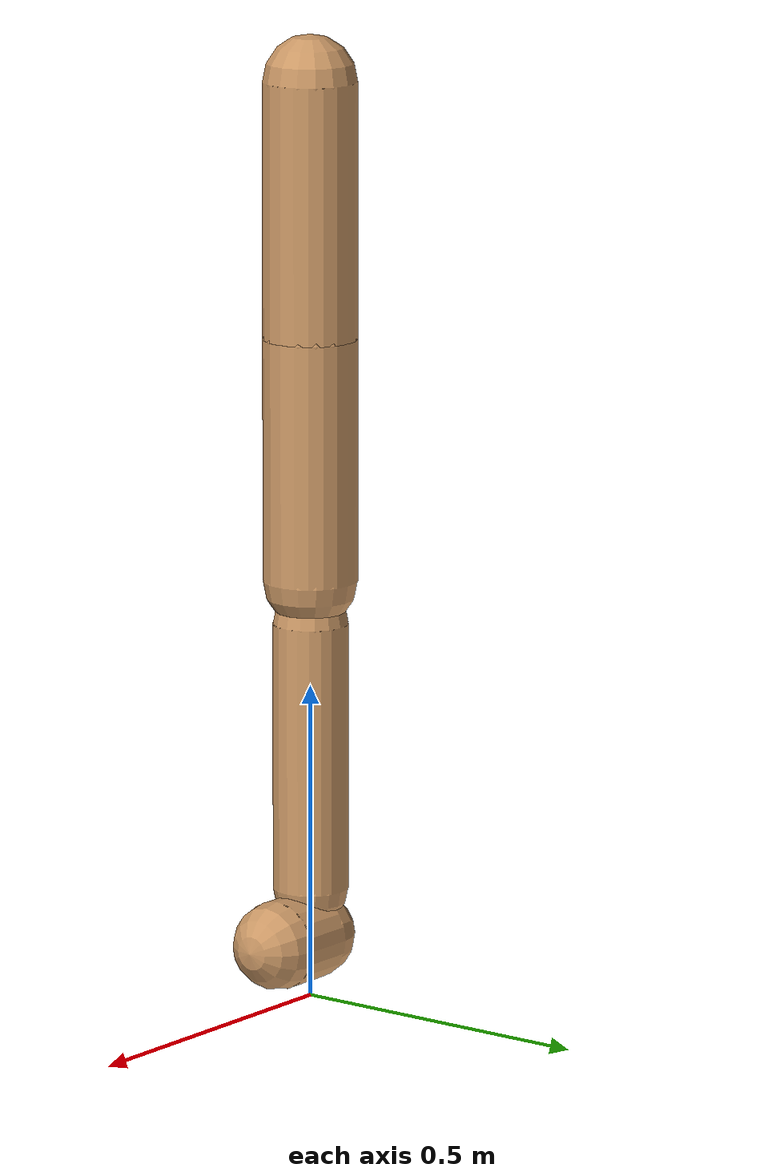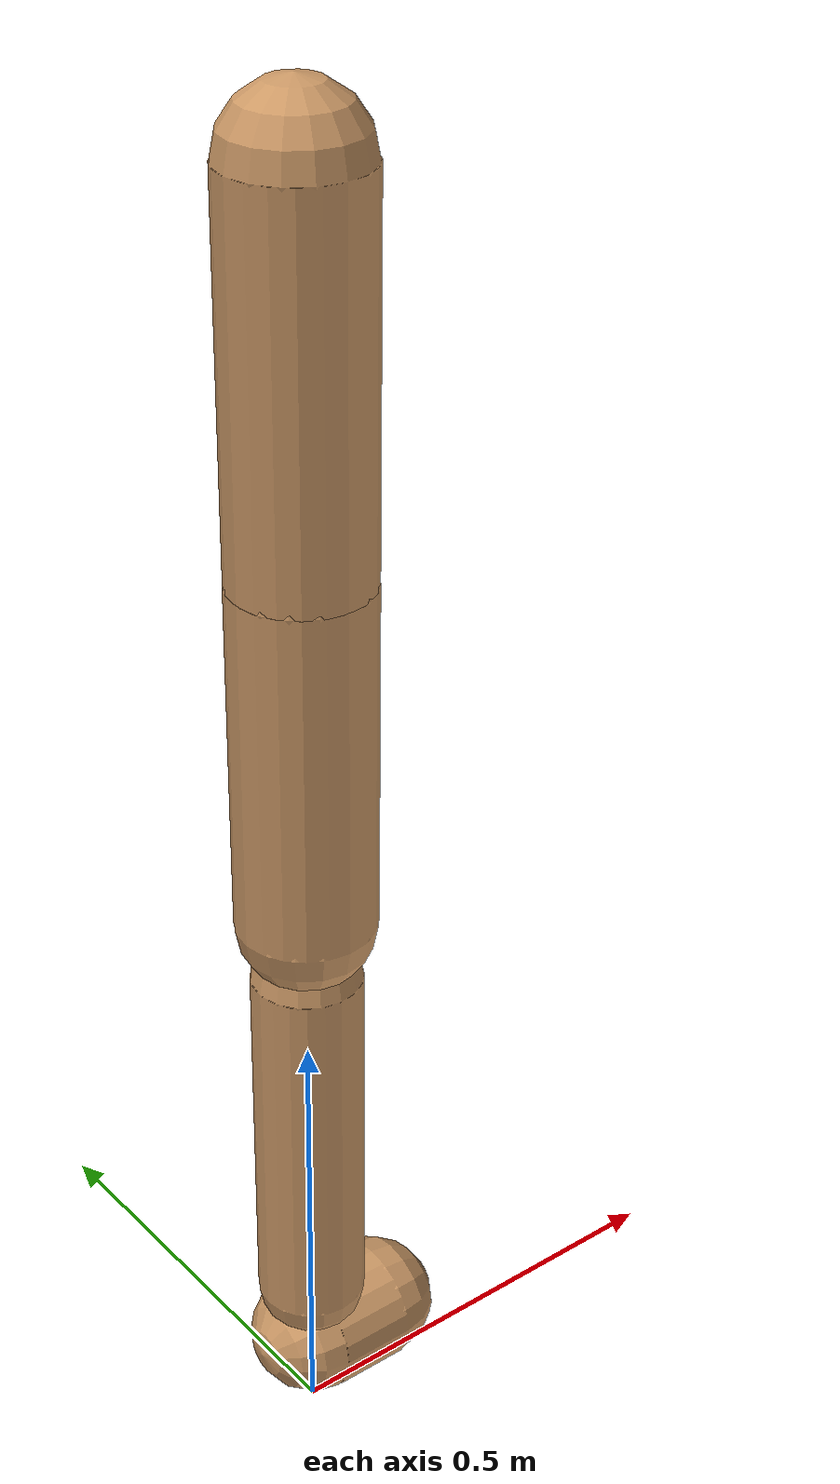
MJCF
<mujoco model="walker2d">
  <compiler angle="degree" coordinate="global" inertiafromgeom="true" />
  <default>
    <joint armature="0.01" damping=".1" limited="true" />
    <geom conaffinity="0" condim="3" contype="1" density="1000" friction="0.8 .1 .1" rgba="0.8 0.6 .4 1" />
  </default>
  <option integrator="RK4" timestep="0.002" />
  <worldbody>

    <body name="torso" pos="0 0 -0.14372296927317557">
      <joint armature="0" axis="1 0 0" damping="0" limited="false" name="ignorex" pos="0 0 0" stiffness="0" type="slide" />
      <joint armature="0" axis="0 0 1" damping="0" limited="false" name="ignorez" pos="0 0 0" ref="1.25" stiffness="0" type="slide" />
      <joint armature="0" axis="0 1 0" damping="0" limited="false" name="ignorey" pos="0 0 0" stiffness="0" type="hinge" />
      <geom fromto="0 0 1.45 0 0 1.05" name="torso_geom" size="0.07369770961870596" type="capsule" />
      <body name="thigh">
        <joint axis="0 -1 0" name="thigh_joint" pos="0 0 1.05" range="-150 0" type="hinge" />
        <geom fromto="0.0 0.0 1.05 0.0 0.0 0.6680793012346621" name="thigh_geom" size="0.07389153779831821" type="capsule" />
        <body name="leg" pos="0.0 0.0 0.0680793012346621">
          <joint axis="0 -1 0" name="leg_joint" pos="0 0 0.6" range="-150 0" type="hinge" />
          <geom fromto="0.0 0.0 0.6 0.0 0.0 0.17564366803851345" name="leg_geom" size="0.059113230238654564" type="capsule" />
          <body name="foot" pos="0.0 0.0 0.07564366803851344">
            <joint axis="0 -1 0" name="foot_joint" pos="0 0 0.1" range="-45 45" type="hinge" />
            <geom fromto="0.0 0.0 0.1 0.08544995672135972 0.0 0.1" name="foot_geom" size="0.06954029996880735" type="capsule" />
          </body>
        </body>
      </body>

      <body name="thigh_left">
        <joint axis="0 -1 0" name="thigh_left_joint" pos="0 0 1.05" range="-150 0" type="hinge" />
        <geom fromto="0.0 0.0 1.05 0.0 0.0 0.6680793012346621" name="thigh_left_geom" rgba=".7 .3 .6 1" size="0.07389153779831821" type="capsule" />
        <body name="leg_left" pos="0.0 0.0 0.0680793012346621">
          <joint axis="0 -1 0" name="leg_left_joint" pos="0 0 0.6" range="-150 0" type="hinge" />
          <geom fromto="0.0 0.0 0.6 0.0 0.0 0.17564366803851345" name="leg_left_geom" rgba=".7 .3 .6 1" size="0.059113230238654564" type="capsule" />
          <body name="foot_left" pos="0.0 0.0 0.07564366803851344">
            <joint axis="0 -1 0" name="foot_left_joint" pos="0 0 0.1" range="-45 45" type="hinge" />
            <geom fromto="0.0 0.0 0.1 0.08544995672135972 0.0 0.1" name="foot_left_geom" rgba=".7 .3 .6 1" size="0.06954029996880735" type="capsule" />
          </body>
        </body>
      </body>
    </body>
  </worldbody>
  <actuator>

    <motor ctrllimited="true" ctrlrange="-1.0 1.0" gear="100" joint="thigh_joint" />
    <motor ctrllimited="true" ctrlrange="-1.0 1.0" gear="100" joint="leg_joint" />
    <motor ctrllimited="true" ctrlrange="-1.0 1.0" gear="100" joint="foot_joint" />
    <motor ctrllimited="true" ctrlrange="-1.0 1.0" gear="100" joint="thigh_left_joint" />
    <motor ctrllimited="true" ctrlrange="-1.0 1.0" gear="100" joint="leg_left_joint" />
    <motor ctrllimited="true" ctrlrange="-1.0 1.0" gear="100" joint="foot_left_joint" />

  </actuator>
</mujoco>
